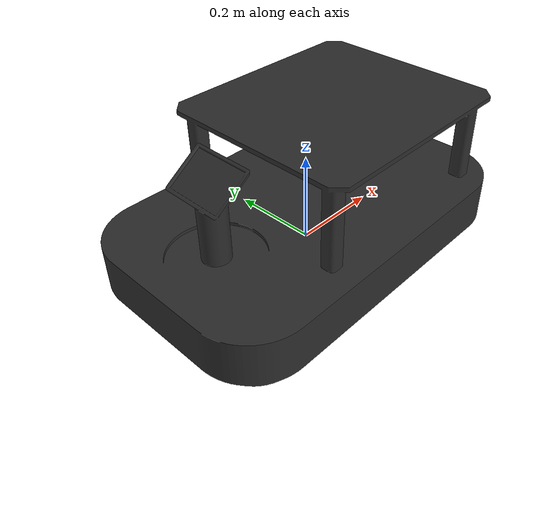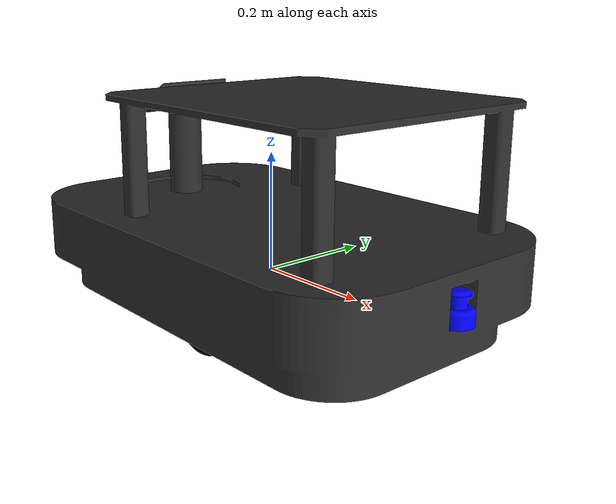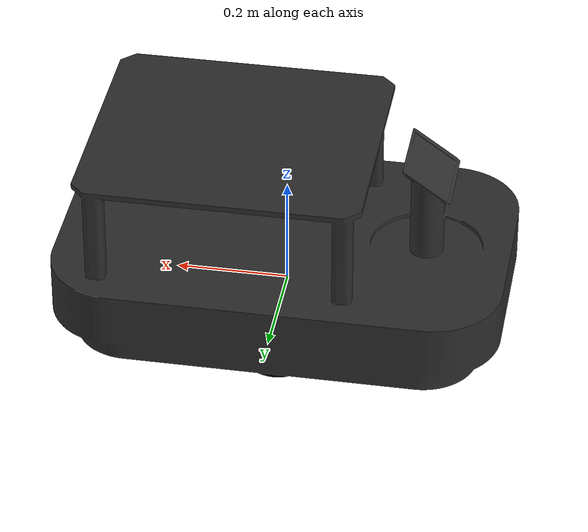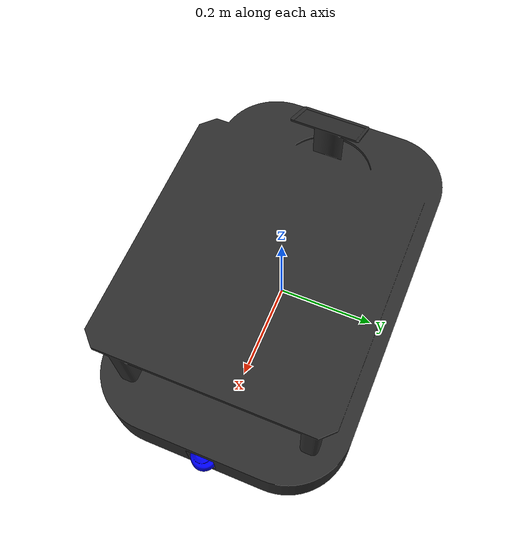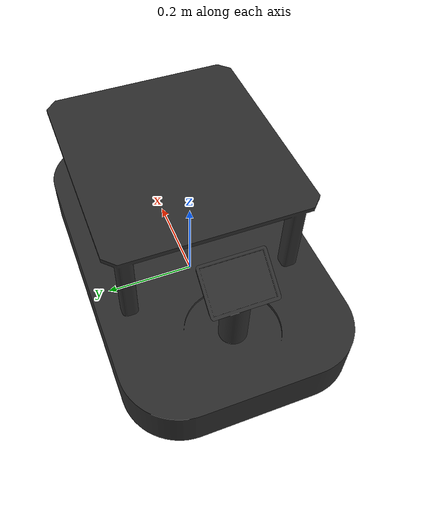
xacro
<?xml version="1.0" ?>
<robot name="bb_botamr" xmlns:xacro="http://www.ros.org/wiki/xacro">

<xacro:include filename="$(find gazebo_sim)/urdf/materials.xacro" />
<xacro:include filename="$(find gazebo_sim)/urdf/bb_botamr.trans" />

<link name="base_footprint"></link>

<link name="base_link">
  <inertial>
    <origin xyz="0.006638255987375507 2.6688314987761043e-16 0.041973706137380586" rpy="0 0 0"/>
    <mass value="50"/>
    <inertia
      ixx="2.0" ixy="0.0" ixz="0.0"
      iyy="3.27" iyz="0.0"
      izz="3.8958"/>
  </inertial>
  <visual>
    <origin xyz="0 0 0" rpy="0 0 0"/>
    <geometry>
      <mesh filename="file://$(find gazebo_sim)/meshes/base_link.stl" scale="0.001 0.001 0.001"/>
    </geometry>
    <material name="body"/>
  </visual>
  <collision>
    <origin xyz="0 0 0" rpy="0 0 0"/>
    <geometry>
      <mesh filename="file://$(find gazebo_sim)/meshes/base_link.stl" scale="0.001 0.001 0.001"/>
    </geometry>
  </collision>
</link>

<link name="right_wheel_1">
  <inertial>
    <origin xyz="-1.4251171062635156e-08 -0.029602926312925604 -1.6617087678083564e-08" rpy="0 0 0"/>
    <mass value="10"/>
    <inertia
      ixx="0.0184" ixy="0.0" ixz="0.0"
      iyy="0.0184" iyz="0.0"
      izz="0.028125"/>
  </inertial>
  <visual>
    <origin xyz="-0.0 0.1 0.04" rpy="0 0 0"/>
    <geometry>
      <mesh filename="file://$(find gazebo_sim)/meshes/right_wheel_1.stl" scale="0.001 0.001 0.001"/>
    </geometry>
    <material name="wheel"/>
  </visual>
  <collision>
    <origin xyz="-0.0 0.1 0.04" rpy="0 0 0"/>
    <geometry>
      <mesh filename="file://$(find gazebo_sim)/meshes/right_wheel_1.stl" scale="0.001 0.001 0.001"/>
    </geometry>
  </collision>
</link>

<link name="left_wheel_1">
  <inertial>
    <origin xyz="-1.4251171047652784e-08 0.02960292631292591 1.661708761563352e-08" rpy="0 0 0"/>
    <mass value="10"/>
    <inertia
      ixx="0.0184" ixy="0.0" ixz="0.0"
      iyy="0.0184" iyz="0.0"
      izz="0.028125"/>
  </inertial>
  <visual>
    <origin xyz="0.0 -0.1 0.04" rpy="0 0 0"/>
    <geometry>
      <mesh filename="file://$(find gazebo_sim)/meshes/left_wheel_1.stl" scale="0.001 0.001 0.001"/>
    </geometry>
    <material name="wheel"/>
  </visual>
  <collision>
    <origin xyz="0.0 -0.1 0.04" rpy="0 0 0"/>
    <geometry>
      <mesh filename="file://$(find gazebo_sim)/meshes/left_wheel_1.stl" scale="0.001 0.001 0.001"/>
    </geometry>
  </collision>
</link>

<link name="lidar_1">
  <inertial>
    <origin xyz="0 0 0" rpy="0 0 0"/>
    <mass value="0.125"/>
    <inertia ixx="0.001"  ixy="0"  ixz="0" iyy="0.001" iyz="0" izz="0.001" />
  </inertial>
  <visual>
    <origin xyz="-0.39 -0.0 -0.02" rpy="0 0 0"/>
    <geometry>
      <mesh filename="file://$(find gazebo_sim)/meshes/lidar_1.stl" scale="0.001 0.001 0.001"/>
    </geometry>
    <material name="lidar"/>
  </visual>
  <collision>
    <origin xyz="-0.39 -0.0 -0.02" rpy="0 0 0"/>
    <geometry>
      <mesh filename="file://$(find gazebo_sim)/meshes/lidar_1.stl" scale="0.001 0.001 0.001"/>
    </geometry>
  </collision>
</link>

<link name="stand_1">
  <visual>
    <origin xyz="0.25 -0.0 -0.093" rpy="0 0 0"/>
    <geometry>
      <mesh filename="file://$(find gazebo_sim)/meshes/stand_1.stl" scale="0.001 0.001 0.001"/>
    </geometry>
    <material name="body"/>
  </visual>
  <collision>
    <origin xyz="0.25 -0.0 -0.093" rpy="0 0 0"/>
    <geometry>
      <mesh filename="file://$(find gazebo_sim)/meshes/stand_1.stl" scale="0.001 0.001 0.001"/>
    </geometry>
  </collision>
</link>

<joint name="base_joint" type="fixed">
  <origin xyz="0.0 0.0 0.0" rpy="0 0 0"/>
  <parent link="base_footprint"/>
  <child link="base_link"/>
</joint>

<joint name="right_wheel_joint" type="continuous">
  <origin xyz="0.0 -0.1 -0.04" rpy="0 0 0"/>
  <parent link="base_link"/>
  <child link="right_wheel_1"/>
  <axis xyz="0.0 1.0 0.0"/>
</joint>
<joint name="left_wheel_joint" type="continuous">
  <origin xyz="0.0 0.1 -0.04" rpy="0 0 0"/>
  <parent link="base_link"/>
  <child link="left_wheel_1"/>
  <axis xyz="0.0 1.0 0.0"/>
</joint>

<joint name="lidar" type="fixed">
  <origin xyz="0.39 0.0 0.02" rpy="0 0 0"/>
  <parent link="base_link"/>
  <child link="lidar_1"/>
</joint>

<joint name="stand" type="fixed">
  <origin xyz="-0.25 0.0 0.093" rpy="0 0 0"/>
  <parent link="base_link"/>
  <child link="stand_1"/>
</joint>

</robot>

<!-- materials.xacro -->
<robot name="bb_botamr" xmlns:xacro="http://www.ros.org/wiki/xacro" >

<material name="body">
  <color rgba="0.176 0.176 0.176 1.0"/>
</material>

<material name="wheel">
  <color rgba="0.0 0.0 0.0 1.0"/>
</material>

<material name="lidar">
  <color rgba=" 0.0 0.0 1.0 1.0"/>
</material>

</robot>
